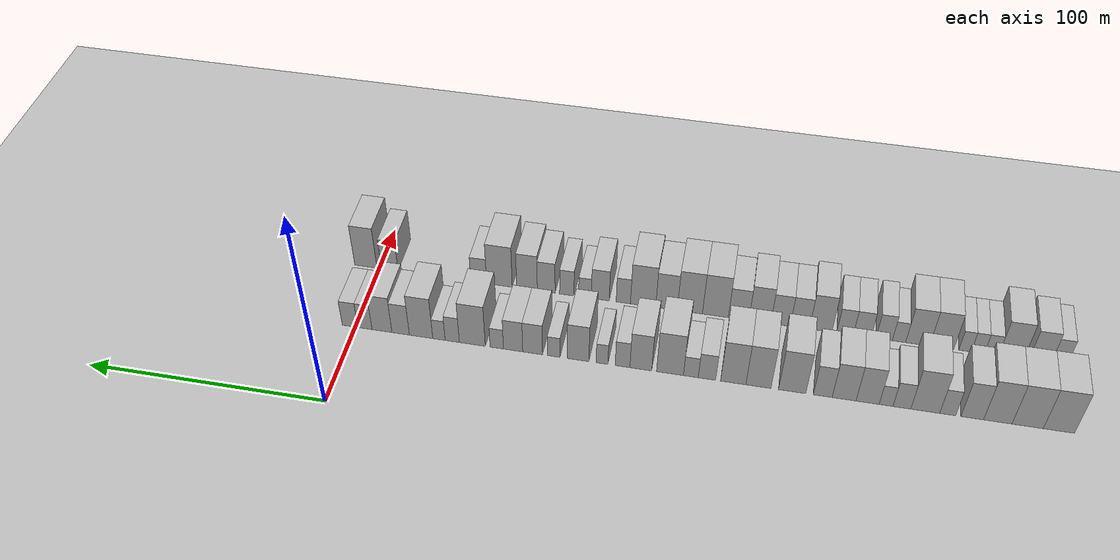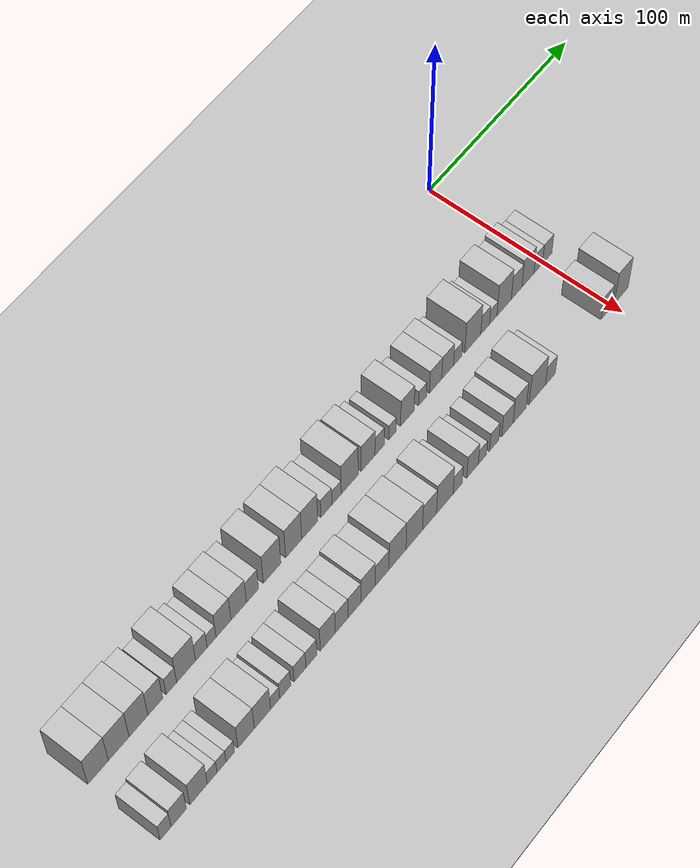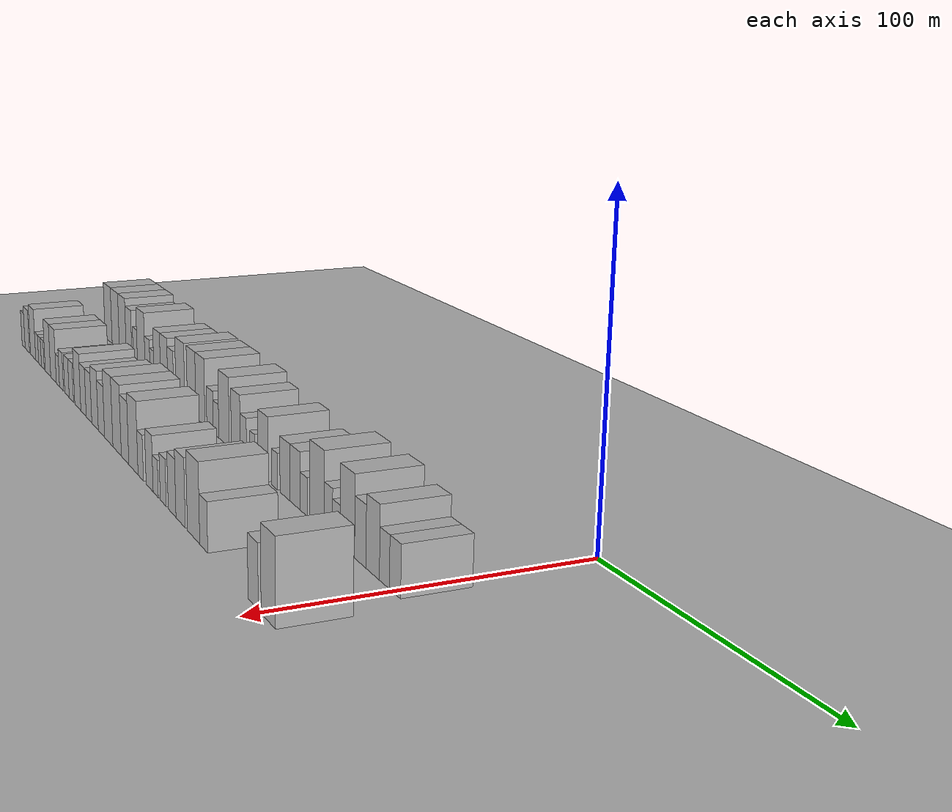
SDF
<sdf version="1.6">
 <world name="default">
  <include><name>ground_plane_1</name><uri>model://HANNAS_ground_plane</uri></include>
  <include>
   <name>ground_plane_2</name>
   <uri>model://HANNAS_ground_plane</uri>
   <pose>100 0 0  0 0 0</pose>
  </include>
  <model name="building_1">
   <static>1</static>
   <pose>50.0000 -284.1602 0 0.000000 0.000000 0.000000</pose>
   <link name="link">
    <pose>0 0 12.00 0 0 0</pose>
    <collision name="collision"><geometry><box><size>20.0000 11.6795 24.0000</size></box></geometry></collision>
    <visual name="visual">
     <cast_shadows>0</cast_shadows>
     <geometry><box><size>20.0000 11.6795 24.0000</size></box></geometry>
     <material>
      <script>
       <uri>model://HANNAS_wall/materials/scripts</uri>
       <uri>model://HANNAS_wall/materials/textures</uri>
       <name>vrc/HANNAS_wall</name>
      </script>
     </material>
    </visual>
   </link>
  </model>
  <model name="building_2">
   <static>1</static>
   <pose>50.0000 -272.4038 0 0.000000 0.000000 0.000000</pose>
   <link name="link">
    <pose>0 0 12.00 0 0 0</pose>
    <collision name="collision"><geometry><box><size>20.0000 11.8333 24.0000</size></box></geometry></collision>
    <visual name="visual">
     <cast_shadows>0</cast_shadows>
     <geometry><box><size>20.0000 11.8333 24.0000</size></box></geometry>
     <material>
      <script>
       <uri>model://HANNAS_wall/materials/scripts</uri>
       <uri>model://HANNAS_wall/materials/textures</uri>
       <name>vrc/HANNAS_wall</name>
      </script>
     </material>
    </visual>
   </link>
  </model>
  <model name="building_3">
   <static>1</static>
   <pose>50.0000 -261.0836 0 0.000000 0.000000 0.000000</pose>
   <link name="link">
    <pose>0 0 12.00 0 0 0</pose>
    <collision name="collision"><geometry><box><size>20.0000 10.8070 24.0000</size></box></geometry></collision>
    <visual name="visual">
     <cast_shadows>0</cast_shadows>
     <geometry><box><size>20.0000 10.8070 24.0000</size></box></geometry>
     <material>
      <script>
       <uri>model://HANNAS_wall/materials/scripts</uri>
       <uri>model://HANNAS_wall/materials/textures</uri>
       <name>vrc/HANNAS_wall</name>
      </script>
     </material>
    </visual>
   </link>
  </model>
  <model name="building_4">
   <static>1</static>
   <pose>50.0000 -251.3579 0 0.000000 0.000000 0.000000</pose>
   <link name="link">
    <pose>0 0 10.50 0 0 0</pose>
    <collision name="collision"><geometry><box><size>20.0000 8.6444 21.0000</size></box></geometry></collision>
    <visual name="visual">
     <cast_shadows>0</cast_shadows>
     <geometry><box><size>20.0000 8.6444 21.0000</size></box></geometry>
     <material>
      <script>
       <uri>model://HANNAS_wall/materials/scripts</uri>
       <uri>model://HANNAS_wall/materials/textures</uri>
       <name>vrc/HANNAS_wall</name>
      </script>
     </material>
    </visual>
   </link>
  </model>
  <model name="building_5">
   <static>1</static>
   <pose>50.0000 -241.9757 0 0.000000 0.000000 0.000000</pose>
   <link name="link">
    <pose>0 0 7.50 0 0 0</pose>
    <collision name="collision"><geometry><box><size>20.0000 6.1200 15.0000</size></box></geometry></collision>
    <visual name="visual">
     <cast_shadows>0</cast_shadows>
     <geometry><box><size>20.0000 6.1200 15.0000</size></box></geometry>
     <material>
      <script>
       <uri>model://HANNAS_wall/materials/scripts</uri>
       <uri>model://HANNAS_wall/materials/textures</uri>
       <name>vrc/HANNAS_wall</name>
      </script>
     </material>
    </visual>
   </link>
  </model>
  <model name="building_6">
   <static>1</static>
   <pose>50.0000 -233.3348 0 0.000000 0.000000 0.000000</pose>
   <link name="link">
    <pose>0 0 12.00 0 0 0</pose>
    <collision name="collision"><geometry><box><size>20.0000 11.1619 24.0000</size></box></geometry></collision>
    <visual name="visual">
     <cast_shadows>0</cast_shadows>
     <geometry><box><size>20.0000 11.1619 24.0000</size></box></geometry>
     <material>
      <script>
       <uri>model://HANNAS_wall/materials/scripts</uri>
       <uri>model://HANNAS_wall/materials/textures</uri>
       <name>vrc/HANNAS_wall</name>
      </script>
     </material>
    </visual>
   </link>
  </model>
  <model name="building_7">
   <static>1</static>
   <pose>50.0000 -224.3012 0 0.000000 0.000000 0.000000</pose>
   <link name="link">
    <pose>0 0 7.50 0 0 0</pose>
    <collision name="collision"><geometry><box><size>20.0000 6.9053 15.0000</size></box></geometry></collision>
    <visual name="visual">
     <cast_shadows>0</cast_shadows>
     <geometry><box><size>20.0000 6.9053 15.0000</size></box></geometry>
     <material>
      <script>
       <uri>model://HANNAS_wall/materials/scripts</uri>
       <uri>model://HANNAS_wall/materials/textures</uri>
       <name>vrc/HANNAS_wall</name>
      </script>
     </material>
    </visual>
   </link>
  </model>
  <model name="building_8">
   <static>1</static>
   <pose>50.0000 -218.1697 0 0.000000 0.000000 0.000000</pose>
   <link name="link">
    <pose>0 0 6.00 0 0 0</pose>
    <collision name="collision"><geometry><box><size>20.0000 5.3576 12.0000</size></box></geometry></collision>
    <visual name="visual">
     <cast_shadows>0</cast_shadows>
     <geometry><box><size>20.0000 5.3576 12.0000</size></box></geometry>
     <material>
      <script>
       <uri>model://HANNAS_wall/materials/scripts</uri>
       <uri>model://HANNAS_wall/materials/textures</uri>
       <name>vrc/HANNAS_wall</name>
      </script>
     </material>
    </visual>
   </link>
  </model>
  <model name="building_9">
   <static>1</static>
   <pose>50.0000 -210.9690 0 0.000000 0.000000 0.000000</pose>
   <link name="link">
    <pose>0 0 10.50 0 0 0</pose>
    <collision name="collision"><geometry><box><size>20.0000 9.0439 21.0000</size></box></geometry></collision>
    <visual name="visual">
     <cast_shadows>0</cast_shadows>
     <geometry><box><size>20.0000 9.0439 21.0000</size></box></geometry>
     <material>
      <script>
       <uri>model://HANNAS_wall/materials/scripts</uri>
       <uri>model://HANNAS_wall/materials/textures</uri>
       <name>vrc/HANNAS_wall</name>
      </script>
     </material>
    </visual>
   </link>
  </model>
  <model name="building_10">
   <static>1</static>
   <pose>50.0000 -201.7612 0 0.000000 0.000000 0.000000</pose>
   <link name="link">
    <pose>0 0 10.50 0 0 0</pose>
    <collision name="collision"><geometry><box><size>20.0000 9.3718 21.0000</size></box></geometry></collision>
    <visual name="visual">
     <cast_shadows>0</cast_shadows>
     <geometry><box><size>20.0000 9.3718 21.0000</size></box></geometry>
     <material>
      <script>
       <uri>model://HANNAS_wall/materials/scripts</uri>
       <uri>model://HANNAS_wall/materials/textures</uri>
       <name>vrc/HANNAS_wall</name>
      </script>
     </material>
    </visual>
   </link>
  </model>
  <model name="building_11">
   <static>1</static>
   <pose>50.0000 -193.3830 0 0.000000 0.000000 0.000000</pose>
   <link name="link">
    <pose>0 0 9.00 0 0 0</pose>
    <collision name="collision"><geometry><box><size>20.0000 7.3846 18.0000</size></box></geometry></collision>
    <visual name="visual">
     <cast_shadows>0</cast_shadows>
     <geometry><box><size>20.0000 7.3846 18.0000</size></box></geometry>
     <material>
      <script>
       <uri>model://HANNAS_wall/materials/scripts</uri>
       <uri>model://HANNAS_wall/materials/textures</uri>
       <name>vrc/HANNAS_wall</name>
      </script>
     </material>
    </visual>
   </link>
  </model>
  <model name="building_12">
   <static>1</static>
   <pose>50.0000 -181.2933 0 0.000000 0.000000 0.000000</pose>
   <link name="link">
    <pose>0 0 12.00 0 0 0</pose>
    <collision name="collision"><geometry><box><size>20.0000 10.7947 24.0000</size></box></geometry></collision>
    <visual name="visual">
     <cast_shadows>0</cast_shadows>
     <geometry><box><size>20.0000 10.7947 24.0000</size></box></geometry>
     <material>
      <script>
       <uri>model://HANNAS_wall/materials/scripts</uri>
       <uri>model://HANNAS_wall/materials/textures</uri>
       <name>vrc/HANNAS_wall</name>
      </script>
     </material>
    </visual>
   </link>
  </model>
  <model name="building_13">
   <static>1</static>
   <pose>50.0000 -167.8822 0 0.000000 0.000000 0.000000</pose>
   <link name="link">
    <pose>0 0 12.00 0 0 0</pose>
    <collision name="collision"><geometry><box><size>20.0000 10.0277 24.0000</size></box></geometry></collision>
    <visual name="visual">
     <cast_shadows>0</cast_shadows>
     <geometry><box><size>20.0000 10.0277 24.0000</size></box></geometry>
     <material>
      <script>
       <uri>model://HANNAS_wall/materials/scripts</uri>
       <uri>model://HANNAS_wall/materials/textures</uri>
       <name>vrc/HANNAS_wall</name>
      </script>
     </material>
    </visual>
   </link>
  </model>
  <model name="building_14">
   <static>1</static>
   <pose>50.0000 -157.8020 0 0.000000 0.000000 0.000000</pose>
   <link name="link">
    <pose>0 0 12.00 0 0 0</pose>
    <collision name="collision"><geometry><box><size>20.0000 10.1326 24.0000</size></box></geometry></collision>
    <visual name="visual">
     <cast_shadows>0</cast_shadows>
     <geometry><box><size>20.0000 10.1326 24.0000</size></box></geometry>
     <material>
      <script>
       <uri>model://HANNAS_wall/materials/scripts</uri>
       <uri>model://HANNAS_wall/materials/textures</uri>
       <name>vrc/HANNAS_wall</name>
      </script>
     </material>
    </visual>
   </link>
  </model>
  <model name="building_15">
   <static>1</static>
   <pose>50.0000 -147.2319 0 0.000000 0.000000 0.000000</pose>
   <link name="link">
    <pose>0 0 7.50 0 0 0</pose>
    <collision name="collision"><geometry><box><size>20.0000 7.0075 15.0000</size></box></geometry></collision>
    <visual name="visual">
     <cast_shadows>0</cast_shadows>
     <geometry><box><size>20.0000 7.0075 15.0000</size></box></geometry>
     <material>
      <script>
       <uri>model://HANNAS_wall/materials/scripts</uri>
       <uri>model://HANNAS_wall/materials/textures</uri>
       <name>vrc/HANNAS_wall</name>
      </script>
     </material>
    </visual>
   </link>
  </model>
  <model name="building_16">
   <static>1</static>
   <pose>50.0000 -140.7398 0 0.000000 0.000000 0.000000</pose>
   <link name="link">
    <pose>0 0 6.00 0 0 0</pose>
    <collision name="collision"><geometry><box><size>20.0000 5.9767 12.0000</size></box></geometry></collision>
    <visual name="visual">
     <cast_shadows>0</cast_shadows>
     <geometry><box><size>20.0000 5.9767 12.0000</size></box></geometry>
     <material>
      <script>
       <uri>model://HANNAS_wall/materials/scripts</uri>
       <uri>model://HANNAS_wall/materials/textures</uri>
       <name>vrc/HANNAS_wall</name>
      </script>
     </material>
    </visual>
   </link>
  </model>
  <model name="building_17">
   <static>1</static>
   <pose>50.0000 -132.2860 0 0.000000 0.000000 0.000000</pose>
   <link name="link">
    <pose>0 0 12.00 0 0 0</pose>
    <collision name="collision"><geometry><box><size>20.0000 10.9309 24.0000</size></box></geometry></collision>
    <visual name="visual">
     <cast_shadows>0</cast_shadows>
     <geometry><box><size>20.0000 10.9309 24.0000</size></box></geometry>
     <material>
      <script>
       <uri>model://HANNAS_wall/materials/scripts</uri>
       <uri>model://HANNAS_wall/materials/textures</uri>
       <name>vrc/HANNAS_wall</name>
      </script>
     </material>
    </visual>
   </link>
  </model>
  <model name="building_18">
   <static>1</static>
   <pose>50.0000 -120.3710 0 0.000000 0.000000 0.000000</pose>
   <link name="link">
    <pose>0 0 10.50 0 0 0</pose>
    <collision name="collision"><geometry><box><size>20.0000 8.8991 21.0000</size></box></geometry></collision>
    <visual name="visual">
     <cast_shadows>0</cast_shadows>
     <geometry><box><size>20.0000 8.8991 21.0000</size></box></geometry>
     <material>
      <script>
       <uri>model://HANNAS_wall/materials/scripts</uri>
       <uri>model://HANNAS_wall/materials/textures</uri>
       <name>vrc/HANNAS_wall</name>
      </script>
     </material>
    </visual>
   </link>
  </model>
  <model name="building_19">
   <static>1</static>
   <pose>50.0000 -112.9033 0 0.000000 0.000000 0.000000</pose>
   <link name="link">
    <pose>0 0 7.50 0 0 0</pose>
    <collision name="collision"><geometry><box><size>20.0000 6.0361 15.0000</size></box></geometry></collision>
    <visual name="visual">
     <cast_shadows>0</cast_shadows>
     <geometry><box><size>20.0000 6.0361 15.0000</size></box></geometry>
     <material>
      <script>
       <uri>model://HANNAS_wall/materials/scripts</uri>
       <uri>model://HANNAS_wall/materials/textures</uri>
       <name>vrc/HANNAS_wall</name>
      </script>
     </material>
    </visual>
   </link>
  </model>
  <model name="building_20">
   <static>1</static>
   <pose>50.0000 -104.4602 0 0.000000 0.000000 0.000000</pose>
   <link name="link">
    <pose>0 0 6.00 0 0 0</pose>
    <collision name="collision"><geometry><box><size>20.0000 4.8501 12.0000</size></box></geometry></collision>
    <visual name="visual">
     <cast_shadows>0</cast_shadows>
     <geometry><box><size>20.0000 4.8501 12.0000</size></box></geometry>
     <material>
      <script>
       <uri>model://HANNAS_wall/materials/scripts</uri>
       <uri>model://HANNAS_wall/materials/textures</uri>
       <name>vrc/HANNAS_wall</name>
      </script>
     </material>
    </visual>
   </link>
  </model>
  <model name="building_21">
   <static>1</static>
   <pose>50.0000 -94.5433 0 0.000000 0.000000 0.000000</pose>
   <link name="link">
    <pose>0 0 10.50 0 0 0</pose>
    <collision name="collision"><geometry><box><size>20.0000 8.9838 21.0000</size></box></geometry></collision>
    <visual name="visual">
     <cast_shadows>0</cast_shadows>
     <geometry><box><size>20.0000 8.9838 21.0000</size></box></geometry>
     <material>
      <script>
       <uri>model://HANNAS_wall/materials/scripts</uri>
       <uri>model://HANNAS_wall/materials/textures</uri>
       <name>vrc/HANNAS_wall</name>
      </script>
     </material>
    </visual>
   </link>
  </model>
  <model name="building_22">
   <static>1</static>
   <pose>50.0000 -84.4169 0 0.000000 0.000000 0.000000</pose>
   <link name="link">
    <pose>0 0 6.00 0 0 0</pose>
    <collision name="collision"><geometry><box><size>20.0000 5.2689 12.0000</size></box></geometry></collision>
    <visual name="visual">
     <cast_shadows>0</cast_shadows>
     <geometry><box><size>20.0000 5.2689 12.0000</size></box></geometry>
     <material>
      <script>
       <uri>model://HANNAS_wall/materials/scripts</uri>
       <uri>model://HANNAS_wall/materials/textures</uri>
       <name>vrc/HANNAS_wall</name>
      </script>
     </material>
    </visual>
   </link>
  </model>
  <model name="building_23">
   <static>1</static>
   <pose>50.0000 -75.6403 0 0.000000 0.000000 0.000000</pose>
   <link name="link">
    <pose>0 0 9.00 0 0 0</pose>
    <collision name="collision"><geometry><box><size>20.0000 8.2843 18.0000</size></box></geometry></collision>
    <visual name="visual">
     <cast_shadows>0</cast_shadows>
     <geometry><box><size>20.0000 8.2843 18.0000</size></box></geometry>
     <material>
      <script>
       <uri>model://HANNAS_wall/materials/scripts</uri>
       <uri>model://HANNAS_wall/materials/textures</uri>
       <name>vrc/HANNAS_wall</name>
      </script>
     </material>
    </visual>
   </link>
  </model>
  <model name="building_24">
   <static>1</static>
   <pose>50.0000 -67.4629 0 0.000000 0.000000 0.000000</pose>
   <link name="link">
    <pose>0 0 9.00 0 0 0</pose>
    <collision name="collision"><geometry><box><size>20.0000 8.0704 18.0000</size></box></geometry></collision>
    <visual name="visual">
     <cast_shadows>0</cast_shadows>
     <geometry><box><size>20.0000 8.0704 18.0000</size></box></geometry>
     <material>
      <script>
       <uri>model://HANNAS_wall/materials/scripts</uri>
       <uri>model://HANNAS_wall/materials/textures</uri>
       <name>vrc/HANNAS_wall</name>
      </script>
     </material>
    </visual>
   </link>
  </model>
  <model name="building_25">
   <static>1</static>
   <pose>50.0000 -60.5944 0 0.000000 0.000000 0.000000</pose>
   <link name="link">
    <pose>0 0 6.00 0 0 0</pose>
    <collision name="collision"><geometry><box><size>20.0000 5.6667 12.0000</size></box></geometry></collision>
    <visual name="visual">
     <cast_shadows>0</cast_shadows>
     <geometry><box><size>20.0000 5.6667 12.0000</size></box></geometry>
     <material>
      <script>
       <uri>model://HANNAS_wall/materials/scripts</uri>
       <uri>model://HANNAS_wall/materials/textures</uri>
       <name>vrc/HANNAS_wall</name>
      </script>
     </material>
    </visual>
   </link>
  </model>
  <model name="building_26">
   <static>1</static>
   <pose>50.0000 -50.2685 0 0.000000 0.000000 0.000000</pose>
   <link name="link">
    <pose>0 0 12.00 0 0 0</pose>
    <collision name="collision"><geometry><box><size>20.0000 10.9852 24.0000</size></box></geometry></collision>
    <visual name="visual">
     <cast_shadows>0</cast_shadows>
     <geometry><box><size>20.0000 10.9852 24.0000</size></box></geometry>
     <material>
      <script>
       <uri>model://HANNAS_wall/materials/scripts</uri>
       <uri>model://HANNAS_wall/materials/textures</uri>
       <name>vrc/HANNAS_wall</name>
      </script>
     </material>
    </visual>
   </link>
  </model>
  <model name="building_27">
   <static>1</static>
   <pose>50.0000 -41.7506 0 0.000000 0.000000 0.000000</pose>
   <link name="link">
    <pose>0 0 7.50 0 0 0</pose>
    <collision name="collision"><geometry><box><size>20.0000 6.0505 15.0000</size></box></geometry></collision>
    <visual name="visual">
     <cast_shadows>0</cast_shadows>
     <geometry><box><size>20.0000 6.0505 15.0000</size></box></geometry>
     <material>
      <script>
       <uri>model://HANNAS_wall/materials/scripts</uri>
       <uri>model://HANNAS_wall/materials/textures</uri>
       <name>vrc/HANNAS_wall</name>
      </script>
     </material>
    </visual>
   </link>
  </model>
  <model name="building_28">
   <static>1</static>
   <pose>50.0000 -36.0950 0 0.000000 0.000000 0.000000</pose>
   <link name="link">
    <pose>0 0 6.00 0 0 0</pose>
    <collision name="collision"><geometry><box><size>20.0000 5.2608 12.0000</size></box></geometry></collision>
    <visual name="visual">
     <cast_shadows>0</cast_shadows>
     <geometry><box><size>20.0000 5.2608 12.0000</size></box></geometry>
     <material>
      <script>
       <uri>model://HANNAS_wall/materials/scripts</uri>
       <uri>model://HANNAS_wall/materials/textures</uri>
       <name>vrc/HANNAS_wall</name>
      </script>
     </material>
    </visual>
   </link>
  </model>
  <model name="building_29">
   <static>1</static>
   <pose>50.0000 -28.4472 0 0.000000 0.000000 0.000000</pose>
   <link name="link">
    <pose>0 0 12.00 0 0 0</pose>
    <collision name="collision"><geometry><box><size>20.0000 10.0347 24.0000</size></box></geometry></collision>
    <visual name="visual">
     <cast_shadows>0</cast_shadows>
     <geometry><box><size>20.0000 10.0347 24.0000</size></box></geometry>
     <material>
      <script>
       <uri>model://HANNAS_wall/materials/scripts</uri>
       <uri>model://HANNAS_wall/materials/textures</uri>
       <name>vrc/HANNAS_wall</name>
      </script>
     </material>
    </visual>
   </link>
  </model>
  <model name="building_30">
   <static>1</static>
   <pose>50.0000 -19.6835 0 0.000000 0.000000 0.000000</pose>
   <link name="link">
    <pose>0 0 9.00 0 0 0</pose>
    <collision name="collision"><geometry><box><size>20.0000 7.4927 18.0000</size></box></geometry></collision>
    <visual name="visual">
     <cast_shadows>0</cast_shadows>
     <geometry><box><size>20.0000 7.4927 18.0000</size></box></geometry>
     <material>
      <script>
       <uri>model://HANNAS_wall/materials/scripts</uri>
       <uri>model://HANNAS_wall/materials/textures</uri>
       <name>vrc/HANNAS_wall</name>
      </script>
     </material>
    </visual>
   </link>
  </model>
  <model name="building_31">
   <static>1</static>
   <pose>50.0000 -11.6339 0 0.000000 0.000000 0.000000</pose>
   <link name="link">
    <pose>0 0 10.50 0 0 0</pose>
    <collision name="collision"><geometry><box><size>20.0000 8.6066 21.0000</size></box></geometry></collision>
    <visual name="visual">
     <cast_shadows>0</cast_shadows>
     <geometry><box><size>20.0000 8.6066 21.0000</size></box></geometry>
     <material>
      <script>
       <uri>model://HANNAS_wall/materials/scripts</uri>
       <uri>model://HANNAS_wall/materials/textures</uri>
       <name>vrc/HANNAS_wall</name>
      </script>
     </material>
    </visual>
   </link>
  </model>
  <model name="building_32">
   <static>1</static>
   <pose>50.0000 -4.2705 0 0.000000 0.000000 0.000000</pose>
   <link name="link">
    <pose>0 0 7.50 0 0 0</pose>
    <collision name="collision"><geometry><box><size>20.0000 6.1202 15.0000</size></box></geometry></collision>
    <visual name="visual">
     <cast_shadows>0</cast_shadows>
     <geometry><box><size>20.0000 6.1202 15.0000</size></box></geometry>
     <material>
      <script>
       <uri>model://HANNAS_wall/materials/scripts</uri>
       <uri>model://HANNAS_wall/materials/textures</uri>
       <name>vrc/HANNAS_wall</name>
      </script>
     </material>
    </visual>
   </link>
  </model>
  <model name="building_33">
   <static>1</static>
   <pose>50.0000 2.1707 0 0.000000 0.000000 0.000000</pose>
   <link name="link">
    <pose>0 0 7.50 0 0 0</pose>
    <collision name="collision"><geometry><box><size>20.0000 6.7621 15.0000</size></box></geometry></collision>
    <visual name="visual">
     <cast_shadows>0</cast_shadows>
     <geometry><box><size>20.0000 6.7621 15.0000</size></box></geometry>
     <material>
      <script>
       <uri>model://HANNAS_wall/materials/scripts</uri>
       <uri>model://HANNAS_wall/materials/textures</uri>
       <name>vrc/HANNAS_wall</name>
      </script>
     </material>
    </visual>
   </link>
  </model>
  <model name="building_67">
   <static>1</static>
   <pose>85.0000 -286.8736 0 0.000000 0.000000 0.000000</pose>
   <link name="link">
    <pose>0 0 7.50 0 0 0</pose>
    <collision name="collision"><geometry><box><size>20.0000 6.2529 15.0000</size></box></geometry></collision>
    <visual name="visual">
     <cast_shadows>0</cast_shadows>
     <geometry><box><size>20.0000 6.2529 15.0000</size></box></geometry>
     <material>
      <script>
       <uri>model://HANNAS_wall/materials/scripts</uri>
       <uri>model://HANNAS_wall/materials/textures</uri>
       <name>vrc/HANNAS_wall</name>
      </script>
     </material>
    </visual>
   </link>
  </model>
  <model name="building_68">
   <static>1</static>
   <pose>85.0000 -279.3542 0 0.000000 0.000000 0.000000</pose>
   <link name="link">
    <pose>0 0 9.00 0 0 0</pose>
    <collision name="collision"><geometry><box><size>20.0000 8.7859 18.0000</size></box></geometry></collision>
    <visual name="visual">
     <cast_shadows>0</cast_shadows>
     <geometry><box><size>20.0000 8.7859 18.0000</size></box></geometry>
     <material>
      <script>
       <uri>model://HANNAS_wall/materials/scripts</uri>
       <uri>model://HANNAS_wall/materials/textures</uri>
       <name>vrc/HANNAS_wall</name>
      </script>
     </material>
    </visual>
   </link>
  </model>
  <model name="building_69">
   <static>1</static>
   <pose>85.0000 -267.9315 0 0.000000 0.000000 0.000000</pose>
   <link name="link">
    <pose>0 0 10.50 0 0 0</pose>
    <collision name="collision"><geometry><box><size>20.0000 10.0595 21.0000</size></box></geometry></collision>
    <visual name="visual">
     <cast_shadows>0</cast_shadows>
     <geometry><box><size>20.0000 10.0595 21.0000</size></box></geometry>
     <material>
      <script>
       <uri>model://HANNAS_wall/materials/scripts</uri>
       <uri>model://HANNAS_wall/materials/textures</uri>
       <name>vrc/HANNAS_wall</name>
      </script>
     </material>
    </visual>
   </link>
  </model>
  <model name="building_70">
   <static>1</static>
   <pose>85.0000 -260.0736 0 0.000000 0.000000 0.000000</pose>
   <link name="link">
    <pose>0 0 6.00 0 0 0</pose>
    <collision name="collision"><geometry><box><size>20.0000 5.6561 12.0000</size></box></geometry></collision>
    <visual name="visual">
     <cast_shadows>0</cast_shadows>
     <geometry><box><size>20.0000 5.6561 12.0000</size></box></geometry>
     <material>
      <script>
       <uri>model://HANNAS_wall/materials/scripts</uri>
       <uri>model://HANNAS_wall/materials/textures</uri>
       <name>vrc/HANNAS_wall</name>
      </script>
     </material>
    </visual>
   </link>
  </model>
  <model name="building_71">
   <static>1</static>
   <pose>85.0000 -254.6443 0 0.000000 0.000000 0.000000</pose>
   <link name="link">
    <pose>0 0 6.00 0 0 0</pose>
    <collision name="collision"><geometry><box><size>20.0000 5.2025 12.0000</size></box></geometry></collision>
    <visual name="visual">
     <cast_shadows>0</cast_shadows>
     <geometry><box><size>20.0000 5.2025 12.0000</size></box></geometry>
     <material>
      <script>
       <uri>model://HANNAS_wall/materials/scripts</uri>
       <uri>model://HANNAS_wall/materials/textures</uri>
       <name>vrc/HANNAS_wall</name>
      </script>
     </material>
    </visual>
   </link>
  </model>
  <model name="building_72">
   <static>1</static>
   <pose>85.0000 -249.5383 0 0.000000 0.000000 0.000000</pose>
   <link name="link">
    <pose>0 0 6.00 0 0 0</pose>
    <collision name="collision"><geometry><box><size>20.0000 5.0094 12.0000</size></box></geometry></collision>
    <visual name="visual">
     <cast_shadows>0</cast_shadows>
     <geometry><box><size>20.0000 5.0094 12.0000</size></box></geometry>
     <material>
      <script>
       <uri>model://HANNAS_wall/materials/scripts</uri>
       <uri>model://HANNAS_wall/materials/textures</uri>
       <name>vrc/HANNAS_wall</name>
      </script>
     </material>
    </visual>
   </link>
  </model>
  <model name="building_73">
   <static>1</static>
   <pose>85.0000 -240.1807 0 0.000000 0.000000 0.000000</pose>
   <link name="link">
    <pose>0 0 10.50 0 0 0</pose>
    <collision name="collision"><geometry><box><size>20.0000 9.7058 21.0000</size></box></geometry></collision>
    <visual name="visual">
     <cast_shadows>0</cast_shadows>
     <geometry><box><size>20.0000 9.7058 21.0000</size></box></geometry>
     <material>
      <script>
       <uri>model://HANNAS_wall/materials/scripts</uri>
       <uri>model://HANNAS_wall/materials/textures</uri>
       <name>vrc/HANNAS_wall</name>
      </script>
     </material>
    </visual>
   </link>
  </model>
  <model name="building_74">
   <static>1</static>
   <pose>85.0000 -230.4570 0 0.000000 0.000000 0.000000</pose>
   <link name="link">
    <pose>0 0 10.50 0 0 0</pose>
    <collision name="collision"><geometry><box><size>20.0000 9.7416 21.0000</size></box></geometry></collision>
    <visual name="visual">
     <cast_shadows>0</cast_shadows>
     <geometry><box><size>20.0000 9.7416 21.0000</size></box></geometry>
     <material>
      <script>
       <uri>model://HANNAS_wall/materials/scripts</uri>
       <uri>model://HANNAS_wall/materials/textures</uri>
       <name>vrc/HANNAS_wall</name>
      </script>
     </material>
    </visual>
   </link>
  </model>
  <model name="building_75">
   <static>1</static>
   <pose>85.0000 -222.8788 0 0.000000 0.000000 0.000000</pose>
   <link name="link">
    <pose>0 0 6.00 0 0 0</pose>
    <collision name="collision"><geometry><box><size>20.0000 5.4148 12.0000</size></box></geometry></collision>
    <visual name="visual">
     <cast_shadows>0</cast_shadows>
     <geometry><box><size>20.0000 5.4148 12.0000</size></box></geometry>
     <material>
      <script>
       <uri>model://HANNAS_wall/materials/scripts</uri>
       <uri>model://HANNAS_wall/materials/textures</uri>
       <name>vrc/HANNAS_wall</name>
      </script>
     </material>
    </visual>
   </link>
  </model>
  <model name="building_76">
   <static>1</static>
   <pose>85.0000 -216.8405 0 0.000000 0.000000 0.000000</pose>
   <link name="link">
    <pose>0 0 7.50 0 0 0</pose>
    <collision name="collision"><geometry><box><size>20.0000 6.6617 15.0000</size></box></geometry></collision>
    <visual name="visual">
     <cast_shadows>0</cast_shadows>
     <geometry><box><size>20.0000 6.6617 15.0000</size></box></geometry>
     <material>
      <script>
       <uri>model://HANNAS_wall/materials/scripts</uri>
       <uri>model://HANNAS_wall/materials/textures</uri>
       <name>vrc/HANNAS_wall</name>
      </script>
     </material>
    </visual>
   </link>
  </model>
  <model name="building_77">
   <static>1</static>
   <pose>85.0000 -207.8749 0 0.000000 0.000000 0.000000</pose>
   <link name="link">
    <pose>0 0 7.50 0 0 0</pose>
    <collision name="collision"><geometry><box><size>20.0000 7.2696 15.0000</size></box></geometry></collision>
    <visual name="visual">
     <cast_shadows>0</cast_shadows>
     <geometry><box><size>20.0000 7.2696 15.0000</size></box></geometry>
     <material>
      <script>
       <uri>model://HANNAS_wall/materials/scripts</uri>
       <uri>model://HANNAS_wall/materials/textures</uri>
       <name>vrc/HANNAS_wall</name>
      </script>
     </material>
    </visual>
   </link>
  </model>
  <model name="building_78">
   <static>1</static>
   <pose>85.0000 -200.8433 0 0.000000 0.000000 0.000000</pose>
   <link name="link">
    <pose>0 0 7.50 0 0 0</pose>
    <collision name="collision"><geometry><box><size>20.0000 6.7935 15.0000</size></box></geometry></collision>
    <visual name="visual">
     <cast_shadows>0</cast_shadows>
     <geometry><box><size>20.0000 6.7935 15.0000</size></box></geometry>
     <material>
      <script>
       <uri>model://HANNAS_wall/materials/scripts</uri>
       <uri>model://HANNAS_wall/materials/textures</uri>
       <name>vrc/HANNAS_wall</name>
      </script>
     </material>
    </visual>
   </link>
  </model>
  <model name="building_79">
   <static>1</static>
   <pose>85.0000 -190.8085 0 0.000000 0.000000 0.000000</pose>
   <link name="link">
    <pose>0 0 10.50 0 0 0</pose>
    <collision name="collision"><geometry><box><size>20.0000 9.2762 21.0000</size></box></geometry></collision>
    <visual name="visual">
     <cast_shadows>0</cast_shadows>
     <geometry><box><size>20.0000 9.2762 21.0000</size></box></geometry>
     <material>
      <script>
       <uri>model://HANNAS_wall/materials/scripts</uri>
       <uri>model://HANNAS_wall/materials/textures</uri>
       <name>vrc/HANNAS_wall</name>
      </script>
     </material>
    </visual>
   </link>
  </model>
  <model name="building_80">
   <static>1</static>
   <pose>85.0000 -182.1932 0 0.000000 0.000000 0.000000</pose>
   <link name="link">
    <pose>0 0 9.00 0 0 0</pose>
    <collision name="collision"><geometry><box><size>20.0000 7.9544 18.0000</size></box></geometry></collision>
    <visual name="visual">
     <cast_shadows>0</cast_shadows>
     <geometry><box><size>20.0000 7.9544 18.0000</size></box></geometry>
     <material>
      <script>
       <uri>model://HANNAS_wall/materials/scripts</uri>
       <uri>model://HANNAS_wall/materials/textures</uri>
       <name>vrc/HANNAS_wall</name>
      </script>
     </material>
    </visual>
   </link>
  </model>
  <model name="building_81">
   <static>1</static>
   <pose>85.0000 -174.1691 0 0.000000 0.000000 0.000000</pose>
   <link name="link">
    <pose>0 0 9.00 0 0 0</pose>
    <collision name="collision"><geometry><box><size>20.0000 8.0937 18.0000</size></box></geometry></collision>
    <visual name="visual">
     <cast_shadows>0</cast_shadows>
     <geometry><box><size>20.0000 8.0937 18.0000</size></box></geometry>
     <material>
      <script>
       <uri>model://HANNAS_wall/materials/scripts</uri>
       <uri>model://HANNAS_wall/materials/textures</uri>
       <name>vrc/HANNAS_wall</name>
      </script>
     </material>
    </visual>
   </link>
  </model>
  <model name="building_82">
   <static>1</static>
   <pose>85.0000 -165.5374 0 0.000000 0.000000 0.000000</pose>
   <link name="link">
    <pose>0 0 10.50 0 0 0</pose>
    <collision name="collision"><geometry><box><size>20.0000 9.1697 21.0000</size></box></geometry></collision>
    <visual name="visual">
     <cast_shadows>0</cast_shadows>
     <geometry><box><size>20.0000 9.1697 21.0000</size></box></geometry>
     <material>
      <script>
       <uri>model://HANNAS_wall/materials/scripts</uri>
       <uri>model://HANNAS_wall/materials/textures</uri>
       <name>vrc/HANNAS_wall</name>
      </script>
     </material>
    </visual>
   </link>
  </model>
  <model name="building_83">
   <static>1</static>
   <pose>85.0000 -156.6534 0 0.000000 0.000000 0.000000</pose>
   <link name="link">
    <pose>0 0 9.00 0 0 0</pose>
    <collision name="collision"><geometry><box><size>20.0000 8.5984 18.0000</size></box></geometry></collision>
    <visual name="visual">
     <cast_shadows>0</cast_shadows>
     <geometry><box><size>20.0000 8.5984 18.0000</size></box></geometry>
     <material>
      <script>
       <uri>model://HANNAS_wall/materials/scripts</uri>
       <uri>model://HANNAS_wall/materials/textures</uri>
       <name>vrc/HANNAS_wall</name>
      </script>
     </material>
    </visual>
   </link>
  </model>
  <model name="building_84">
   <static>1</static>
   <pose>85.0000 -146.9001 0 0.000000 0.000000 0.000000</pose>
   <link name="link">
    <pose>0 0 12.00 0 0 0</pose>
    <collision name="collision"><geometry><box><size>20.0000 10.9081 24.0000</size></box></geometry></collision>
    <visual name="visual">
     <cast_shadows>0</cast_shadows>
     <geometry><box><size>20.0000 10.9081 24.0000</size></box></geometry>
     <material>
      <script>
       <uri>model://HANNAS_wall/materials/scripts</uri>
       <uri>model://HANNAS_wall/materials/textures</uri>
       <name>vrc/HANNAS_wall</name>
      </script>
     </material>
    </visual>
   </link>
  </model>
  <model name="building_85">
   <static>1</static>
   <pose>85.0000 -136.1205 0 0.000000 0.000000 0.000000</pose>
   <link name="link">
    <pose>0 0 12.00 0 0 0</pose>
    <collision name="collision"><geometry><box><size>20.0000 10.6510 24.0000</size></box></geometry></collision>
    <visual name="visual">
     <cast_shadows>0</cast_shadows>
     <geometry><box><size>20.0000 10.6510 24.0000</size></box></geometry>
     <material>
      <script>
       <uri>model://HANNAS_wall/materials/scripts</uri>
       <uri>model://HANNAS_wall/materials/textures</uri>
       <name>vrc/HANNAS_wall</name>
      </script>
     </material>
    </visual>
   </link>
  </model>
  <model name="building_86">
   <static>1</static>
   <pose>85.0000 -126.1963 0 0.000000 0.000000 0.000000</pose>
   <link name="link">
    <pose>0 0 10.50 0 0 0</pose>
    <collision name="collision"><geometry><box><size>20.0000 9.1974 21.0000</size></box></geometry></collision>
    <visual name="visual">
     <cast_shadows>0</cast_shadows>
     <geometry><box><size>20.0000 9.1974 21.0000</size></box></geometry>
     <material>
      <script>
       <uri>model://HANNAS_wall/materials/scripts</uri>
       <uri>model://HANNAS_wall/materials/textures</uri>
       <name>vrc/HANNAS_wall</name>
      </script>
     </material>
    </visual>
   </link>
  </model>
  <model name="building_87">
   <static>1</static>
   <pose>85.0000 -116.1840 0 0.000000 0.000000 0.000000</pose>
   <link name="link">
    <pose>0 0 12.00 0 0 0</pose>
    <collision name="collision"><geometry><box><size>20.0000 10.8273 24.0000</size></box></geometry></collision>
    <visual name="visual">
     <cast_shadows>0</cast_shadows>
     <geometry><box><size>20.0000 10.8273 24.0000</size></box></geometry>
     <material>
      <script>
       <uri>model://HANNAS_wall/materials/scripts</uri>
       <uri>model://HANNAS_wall/materials/textures</uri>
       <name>vrc/HANNAS_wall</name>
      </script>
     </material>
    </visual>
   </link>
  </model>
  <model name="building_88">
   <static>1</static>
   <pose>85.0000 -107.6926 0 0.000000 0.000000 0.000000</pose>
   <link name="link">
    <pose>0 0 7.50 0 0 0</pose>
    <collision name="collision"><geometry><box><size>20.0000 6.1555 15.0000</size></box></geometry></collision>
    <visual name="visual">
     <cast_shadows>0</cast_shadows>
     <geometry><box><size>20.0000 6.1555 15.0000</size></box></geometry>
     <material>
      <script>
       <uri>model://HANNAS_wall/materials/scripts</uri>
       <uri>model://HANNAS_wall/materials/textures</uri>
       <name>vrc/HANNAS_wall</name>
      </script>
     </material>
    </visual>
   </link>
  </model>
  <model name="building_89">
   <static>1</static>
   <pose>85.0000 -97.7616 0 0.000000 0.000000 0.000000</pose>
   <link name="link">
    <pose>0 0 9.00 0 0 0</pose>
    <collision name="collision"><geometry><box><size>20.0000 7.7066 18.0000</size></box></geometry></collision>
    <visual name="visual">
     <cast_shadows>0</cast_shadows>
     <geometry><box><size>20.0000 7.7066 18.0000</size></box></geometry>
     <material>
      <script>
       <uri>model://HANNAS_wall/materials/scripts</uri>
       <uri>model://HANNAS_wall/materials/textures</uri>
       <name>vrc/HANNAS_wall</name>
      </script>
     </material>
    </visual>
   </link>
  </model>
  <model name="building_90">
   <static>1</static>
   <pose>85.0000 -91.1466 0 0.000000 0.000000 0.000000</pose>
   <link name="link">
    <pose>0 0 6.00 0 0 0</pose>
    <collision name="collision"><geometry><box><size>20.0000 5.5233 12.0000</size></box></geometry></collision>
    <visual name="visual">
     <cast_shadows>0</cast_shadows>
     <geometry><box><size>20.0000 5.5233 12.0000</size></box></geometry>
     <material>
      <script>
       <uri>model://HANNAS_wall/materials/scripts</uri>
       <uri>model://HANNAS_wall/materials/textures</uri>
       <name>vrc/HANNAS_wall</name>
      </script>
     </material>
    </visual>
   </link>
  </model>
  <model name="building_91">
   <static>1</static>
   <pose>85.0000 -83.2676 0 0.000000 0.000000 0.000000</pose>
   <link name="link">
    <pose>0 0 7.50 0 0 0</pose>
    <collision name="collision"><geometry><box><size>20.0000 6.2348 15.0000</size></box></geometry></collision>
    <visual name="visual">
     <cast_shadows>0</cast_shadows>
     <geometry><box><size>20.0000 6.2348 15.0000</size></box></geometry>
     <material>
      <script>
       <uri>model://HANNAS_wall/materials/scripts</uri>
       <uri>model://HANNAS_wall/materials/textures</uri>
       <name>vrc/HANNAS_wall</name>
      </script>
     </material>
    </visual>
   </link>
  </model>
  <model name="building_92">
   <static>1</static>
   <pose>85.0000 -74.2760 0 0.000000 0.000000 0.000000</pose>
   <link name="link">
    <pose>0 0 9.00 0 0 0</pose>
    <collision name="collision"><geometry><box><size>20.0000 7.7484 18.0000</size></box></geometry></collision>
    <visual name="visual">
     <cast_shadows>0</cast_shadows>
     <geometry><box><size>20.0000 7.7484 18.0000</size></box></geometry>
     <material>
      <script>
       <uri>model://HANNAS_wall/materials/scripts</uri>
       <uri>model://HANNAS_wall/materials/textures</uri>
       <name>vrc/HANNAS_wall</name>
      </script>
     </material>
    </visual>
   </link>
  </model>
  <model name="building_93">
   <static>1</static>
   <pose>85.0000 -65.8904 0 0.000000 0.000000 0.000000</pose>
   <link name="link">
    <pose>0 0 10.50 0 0 0</pose>
    <collision name="collision"><geometry><box><size>20.0000 9.0229 21.0000</size></box></geometry></collision>
    <visual name="visual">
     <cast_shadows>0</cast_shadows>
     <geometry><box><size>20.0000 9.0229 21.0000</size></box></geometry>
     <material>
      <script>
       <uri>model://HANNAS_wall/materials/scripts</uri>
       <uri>model://HANNAS_wall/materials/textures</uri>
       <name>vrc/HANNAS_wall</name>
      </script>
     </material>
    </visual>
   </link>
  </model>
  <model name="building_94">
   <static>1</static>
   <pose>85.0000 -53.7402 0 0.000000 0.000000 0.000000</pose>
   <link name="link">
    <pose>0 0 12.00 0 0 0</pose>
    <collision name="collision"><geometry><box><size>20.0000 11.2775 24.0000</size></box></geometry></collision>
    <visual name="visual">
     <cast_shadows>0</cast_shadows>
     <geometry><box><size>20.0000 11.2775 24.0000</size></box></geometry>
     <material>
      <script>
       <uri>model://HANNAS_wall/materials/scripts</uri>
       <uri>model://HANNAS_wall/materials/textures</uri>
       <name>vrc/HANNAS_wall</name>
      </script>
     </material>
    </visual>
   </link>
  </model>
  <model name="building_95">
   <static>1</static>
   <pose>85.0000 -44.5978 0 0.000000 0.000000 0.000000</pose>
   <link name="link">
    <pose>0 0 7.50 0 0 0</pose>
    <collision name="collision"><geometry><box><size>20.0000 7.0074 15.0000</size></box></geometry></collision>
    <visual name="visual">
     <cast_shadows>0</cast_shadows>
     <geometry><box><size>20.0000 7.0074 15.0000</size></box></geometry>
     <material>
      <script>
       <uri>model://HANNAS_wall/materials/scripts</uri>
       <uri>model://HANNAS_wall/materials/textures</uri>
       <name>vrc/HANNAS_wall</name>
      </script>
     </material>
    </visual>
   </link>
  </model>
  <model name="building_96">
   <static>1</static>
   <pose>85.0000 -4.8033 0 0.000000 0.000000 0.000000</pose>
   <link name="link">
    <pose>0 0 9.00 0 0 0</pose>
    <collision name="collision"><geometry><box><size>20.0000 7.5272 18.0000</size></box></geometry></collision>
    <visual name="visual">
     <cast_shadows>0</cast_shadows>
     <geometry><box><size>20.0000 7.5272 18.0000</size></box></geometry>
     <material>
      <script>
       <uri>model://HANNAS_wall/materials/scripts</uri>
       <uri>model://HANNAS_wall/materials/textures</uri>
       <name>vrc/HANNAS_wall</name>
      </script>
     </material>
    </visual>
   </link>
  </model>
  <model name="building_97">
   <static>1</static>
   <pose>85.0000 6.0024 0 0.000000 0.000000 0.000000</pose>
   <link name="link">
    <pose>0 0 12.00 0 0 0</pose>
    <collision name="collision"><geometry><box><size>20.0000 10.0844 24.0000</size></box></geometry></collision>
    <visual name="visual">
     <cast_shadows>0</cast_shadows>
     <geometry><box><size>20.0000 10.0844 24.0000</size></box></geometry>
     <material>
      <script>
       <uri>model://HANNAS_wall/materials/scripts</uri>
       <uri>model://HANNAS_wall/materials/textures</uri>
       <name>vrc/HANNAS_wall</name>
      </script>
     </material>
    </visual>
   </link>
  </model>
 </world>
</sdf>
